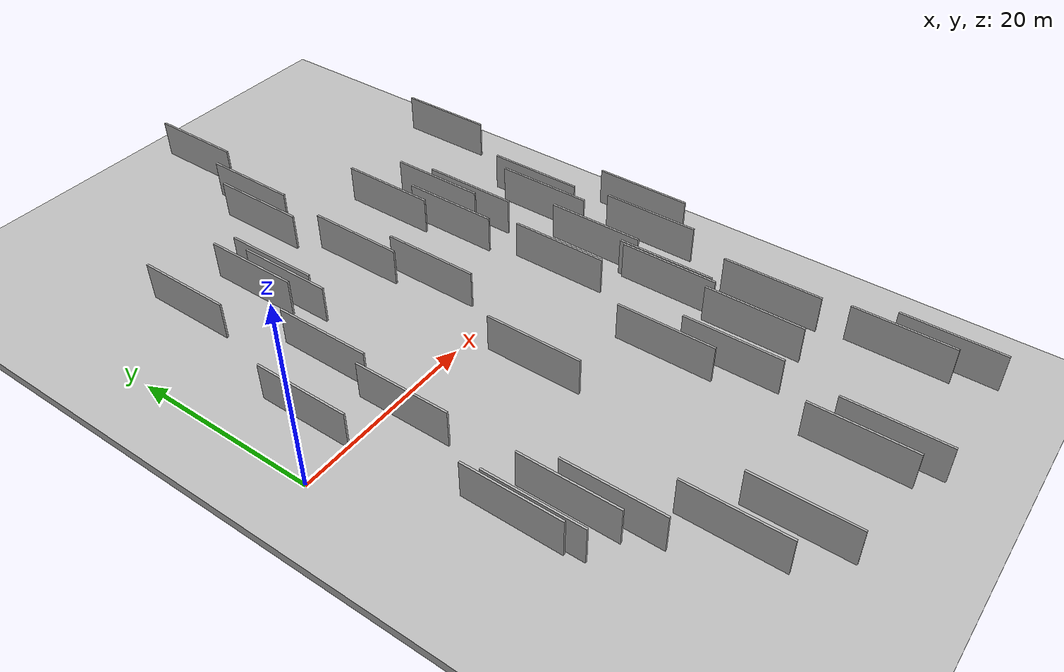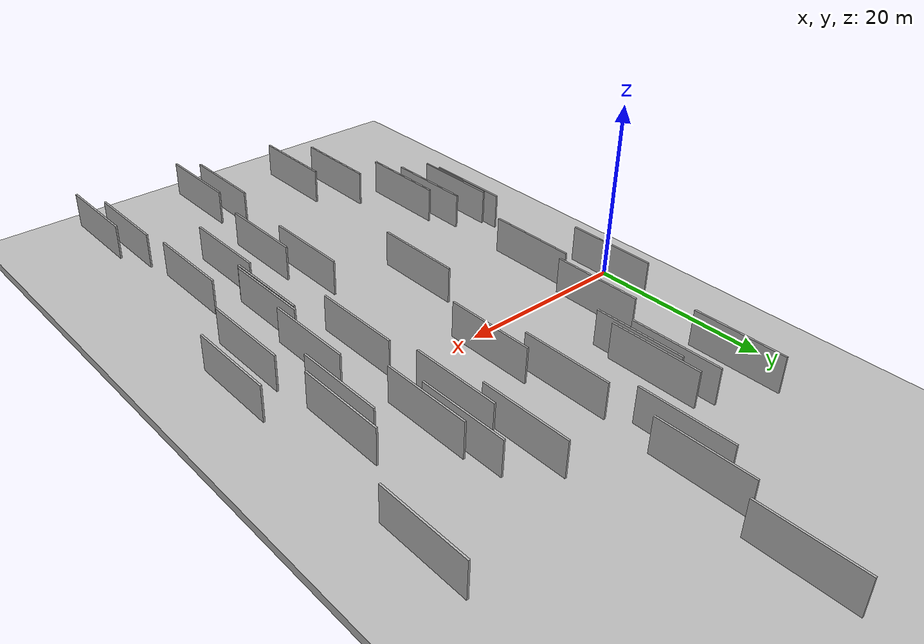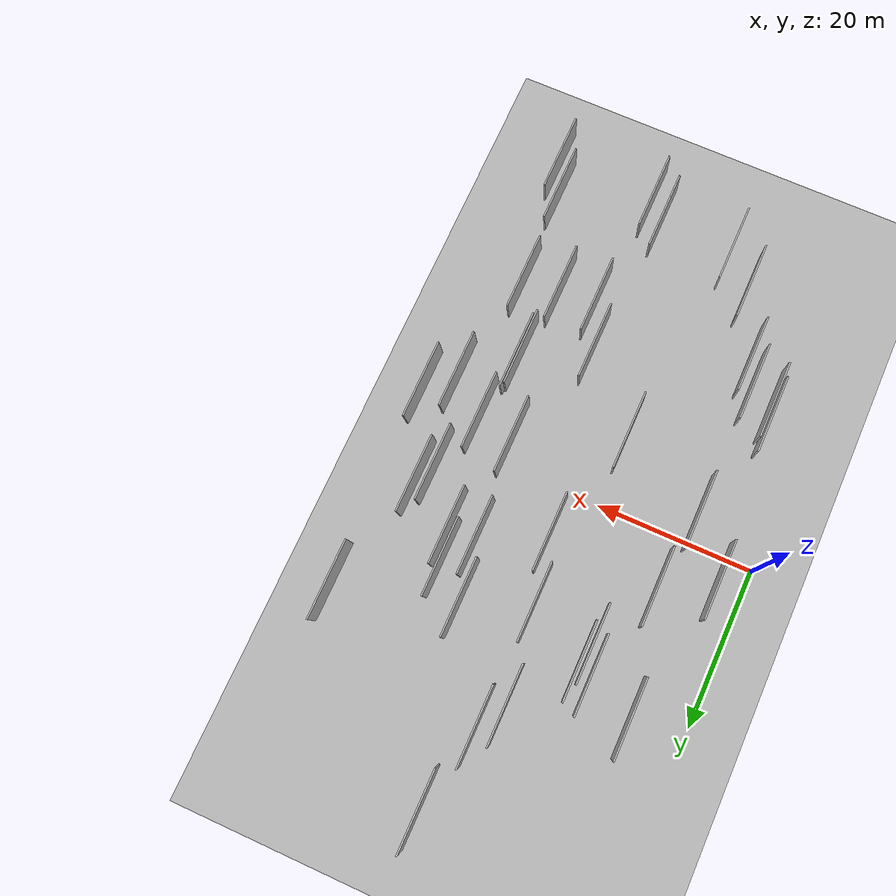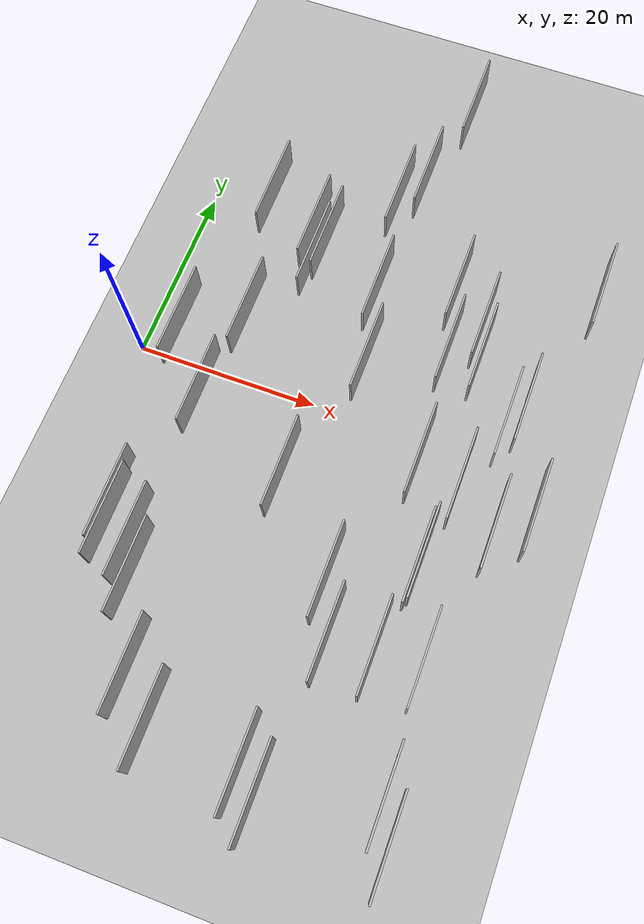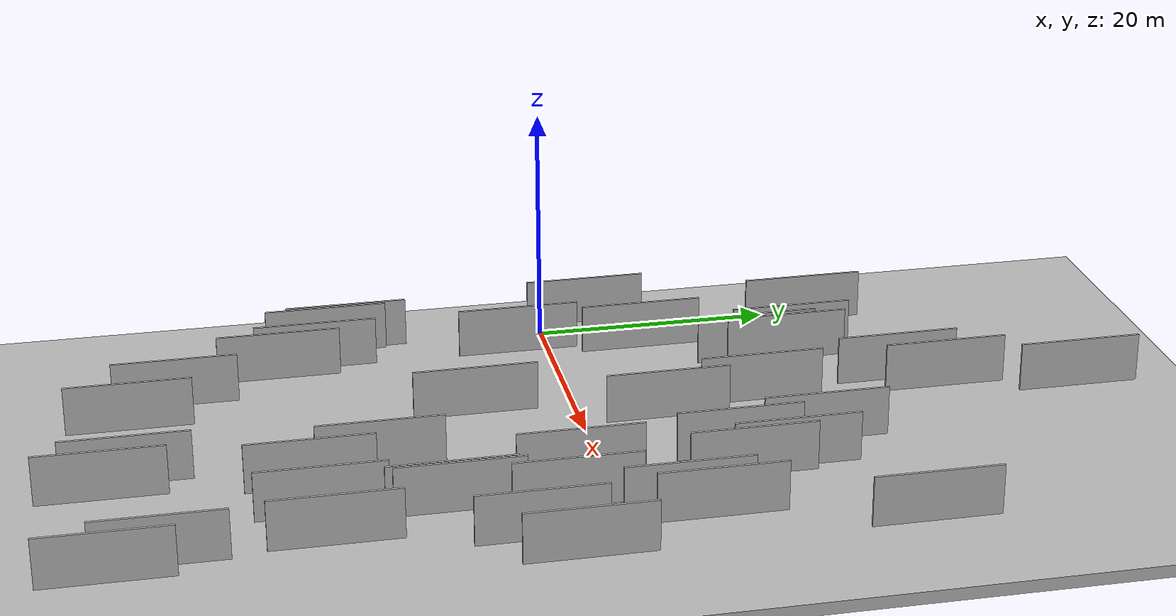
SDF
<?xml version="1.0" encoding="utf-8"?>

<sdf version="1.6">

   <world name="default">

      <gui fullscreen="0">

         <camera name="user_camera">

            <pose>-15 0 4.57585 0 0 0</pose>

            <view_controller>orbit</view_controller>

         </camera>

      </gui>

      <scene>

         <sky>

           <clouds>

             <speed>12</speed>

           </clouds>

         </sky>

         <ambient>0.4 0.4 0.4 1</ambient>

         <background>0.7 0.7 0.7 1</background>

         <shadows>1</shadows>

      </scene>

      <gravity>0 0 -9.8066</gravity>

      <magnetic_field>6e-06 2.3e-05 -4.2e-05</magnetic_field>

      <physics default="0" name="default_physics" type="ode">

         <ode>

            <solver>

               <type>quick</type>

               <iters>10</iters>

               <sor>1.0</sor>

               <use_dynamic_moi_rescaling>0</use_dynamic_moi_rescaling>

            </solver>

            <constraints>

               <cfm>0</cfm>

               <erp>0.2</erp>

               <contact_max_correcting_vel>100</contact_max_correcting_vel>

               <contact_surface_layer>0.001</contact_surface_layer>

            </constraints>

         </ode>

         <max_step_size>0.004</max_step_size>

         <real_time_factor>1</real_time_factor>

         <real_time_update_rate>250</real_time_update_rate>

      </physics>

      <light name="sun" type="directional">

         <cast_shadows>1</cast_shadows>

         <pose>0 0 10 0 0 0</pose>

         <diffuse>0.8 0.8 0.8 1</diffuse>

         <specular>0.2 0.2 0.2 1</specular>

         <attenuation>

            <range>1000</range>

            <constant>0.9</constant>

            <linear>0.01</linear>

            <quadratic>0.001</quadratic>

         </attenuation>

         <direction>-0.5 0.1 -0.9</direction>

      </light>

      <include>

         <name>ground_plane_1</name>

         <uri>model://HANNAS_ground_plane</uri>

         <pose>0 0 0  0 0 0</pose>

      </include>

      <include>

         <name>ground_plane_2</name>

         <uri>model://HANNAS_ground_plane</uri>

         <pose>100 0 0  0 0 0</pose>

      </include>

      <model name="HANNAS_wall_1">

         <static>1</static>

         <pose frame="">30.2794 -23.0548 2.5 0.000000 0.000000 1.570796</pose>

         <link name="link">

            <pose frame="">0 0 2.00 0 0 0</pose>

            <collision name="collision">

               <geometry>

                  <box>

                     <size>10.00 0.2 4.00</size>

                  </box>

               </geometry>

               <max_contacts>10</max_contacts>

               <surface>

                  <contact>

                     <ode/>

                  </contact>

                  <bounce/>

                  <friction>

                     <torsional>

                        <ode/>

                     </torsional>

                     <ode/>

                  </friction>

               </surface>

            </collision>

            <visual name="visual">

               <cast_shadows>0</cast_shadows>

               <geometry>

                  <box>

                     <size>10.00 0.2 4.00</size>

                  </box>

               </geometry>

               <material>

                  <script>

                     <uri>model://HANNAS_wall/materials/scripts</uri>

                     <uri>model://HANNAS_wall/materials/textures</uri>

                     <name>vrc/HANNAS_wall</name>

                  </script>

               </material>

            </visual>

            <self_collide>0</self_collide>

            <enable_wind>0</enable_wind>

            <kinematic>0</kinematic>

         </link>

      </model>

      <model name="HANNAS_wall_2">

         <static>1</static>

         <pose frame="">41.9882 -7.5884 2.5 0.000000 0.000000 1.570796</pose>

         <link name="link">

            <pose frame="">0 0 2.00 0 0 0</pose>

            <collision name="collision">

               <geometry>

                  <box>

                     <size>10.00 0.2 4.00</size>

                  </box>

               </geometry>

               <max_contacts>10</max_contacts>

               <surface>

                  <contact>

                     <ode/>

                  </contact>

                  <bounce/>

                  <friction>

                     <torsional>

                        <ode/>

                     </torsional>

                     <ode/>

                  </friction>

               </surface>

            </collision>

            <visual name="visual">

               <cast_shadows>0</cast_shadows>

               <geometry>

                  <box>

                     <size>10.00 0.2 4.00</size>

                  </box>

               </geometry>

               <material>

                  <script>

                     <uri>model://HANNAS_wall/materials/scripts</uri>

                     <uri>model://HANNAS_wall/materials/textures</uri>

                     <name>vrc/HANNAS_wall</name>

                  </script>

               </material>

            </visual>

            <self_collide>0</self_collide>

            <enable_wind>0</enable_wind>

            <kinematic>0</kinematic>

         </link>

      </model>

      <model name="HANNAS_wall_3">

         <static>1</static>

         <pose frame="">41.2114 6.0041 2.5 0.000000 0.000000 1.570796</pose>

         <link name="link">

            <pose frame="">0 0 2.00 0 0 0</pose>

            <collision name="collision">

               <geometry>

                  <box>

                     <size>10.00 0.2 4.00</size>

                  </box>

               </geometry>

               <max_contacts>10</max_contacts>

               <surface>

                  <contact>

                     <ode/>

                  </contact>

                  <bounce/>

                  <friction>

                     <torsional>

                        <ode/>

                     </torsional>

                     <ode/>

                  </friction>

               </surface>

            </collision>

            <visual name="visual">

               <cast_shadows>0</cast_shadows>

               <geometry>

                  <box>

                     <size>10.00 0.2 4.00</size>

                  </box>

               </geometry>

               <material>

                  <script>

                     <uri>model://HANNAS_wall/materials/scripts</uri>

                     <uri>model://HANNAS_wall/materials/textures</uri>

                     <name>vrc/HANNAS_wall</name>

                  </script>

               </material>

            </visual>

            <self_collide>0</self_collide>

            <enable_wind>0</enable_wind>

            <kinematic>0</kinematic>

         </link>

      </model>

      <model name="HANNAS_wall_4">

         <static>1</static>

         <pose frame="">3.7185 3.2324 2.5 0.000000 0.000000 1.570796</pose>

         <link name="link">

            <pose frame="">0 0 2.00 0 0 0</pose>

            <collision name="collision">

               <geometry>

                  <box>

                     <size>10.00 0.2 4.00</size>

                  </box>

               </geometry>

               <max_contacts>10</max_contacts>

               <surface>

                  <contact>

                     <ode/>

                  </contact>

                  <bounce/>

                  <friction>

                     <torsional>

                        <ode/>

                     </torsional>

                     <ode/>

                  </friction>

               </surface>

            </collision>

            <visual name="visual">

               <cast_shadows>0</cast_shadows>

               <geometry>

                  <box>

                     <size>10.00 0.2 4.00</size>

                  </box>

               </geometry>

               <material>

                  <script>

                     <uri>model://HANNAS_wall/materials/scripts</uri>

                     <uri>model://HANNAS_wall/materials/textures</uri>

                     <name>vrc/HANNAS_wall</name>

                  </script>

               </material>

            </visual>

            <self_collide>0</self_collide>

            <enable_wind>0</enable_wind>

            <kinematic>0</kinematic>

         </link>

      </model>

      <model name="HANNAS_wall_5">

         <static>1</static>

         <pose frame="">39.6640 -22.1935 2.5 0.000000 0.000000 1.570796</pose>

         <link name="link">

            <pose frame="">0 0 2.00 0 0 0</pose>

            <collision name="collision">

               <geometry>

                  <box>

                     <size>10.00 0.2 4.00</size>

                  </box>

               </geometry>

               <max_contacts>10</max_contacts>

               <surface>

                  <contact>

                     <ode/>

                  </contact>

                  <bounce/>

                  <friction>

                     <torsional>

                        <ode/>

                     </torsional>

                     <ode/>

                  </friction>

               </surface>

            </collision>

            <visual name="visual">

               <cast_shadows>0</cast_shadows>

               <geometry>

                  <box>

                     <size>10.00 0.2 4.00</size>

                  </box>

               </geometry>

               <material>

                  <script>

                     <uri>model://HANNAS_wall/materials/scripts</uri>

                     <uri>model://HANNAS_wall/materials/textures</uri>

                     <name>vrc/HANNAS_wall</name>

                  </script>

               </material>

            </visual>

            <self_collide>0</self_collide>

            <enable_wind>0</enable_wind>

            <kinematic>0</kinematic>

         </link>

      </model>

      <model name="HANNAS_wall_6">

         <static>1</static>

         <pose frame="">30.3912 16.9985 2.5 0.000000 0.000000 1.570796</pose>

         <link name="link">

            <pose frame="">0 0 2.00 0 0 0</pose>

            <collision name="collision">

               <geometry>

                  <box>

                     <size>10.00 0.2 4.00</size>

                  </box>

               </geometry>

               <max_contacts>10</max_contacts>

               <surface>

                  <contact>

                     <ode/>

                  </contact>

                  <bounce/>

                  <friction>

                     <torsional>

                        <ode/>

                     </torsional>

                     <ode/>

                  </friction>

               </surface>

            </collision>

            <visual name="visual">

               <cast_shadows>0</cast_shadows>

               <geometry>

                  <box>

                     <size>10.00 0.2 4.00</size>

                  </box>

               </geometry>

               <material>

                  <script>

                     <uri>model://HANNAS_wall/materials/scripts</uri>

                     <uri>model://HANNAS_wall/materials/textures</uri>

                     <name>vrc/HANNAS_wall</name>

                  </script>

               </material>

            </visual>

            <self_collide>0</self_collide>

            <enable_wind>0</enable_wind>

            <kinematic>0</kinematic>

         </link>

      </model>

      <model name="HANNAS_wall_7">

         <static>1</static>

         <pose frame="">17.3504 -35.9372 2.5 0.000000 0.000000 1.570796</pose>

         <link name="link">

            <pose frame="">0 0 2.00 0 0 0</pose>

            <collision name="collision">

               <geometry>

                  <box>

                     <size>10.00 0.2 4.00</size>

                  </box>

               </geometry>

               <max_contacts>10</max_contacts>

               <surface>

                  <contact>

                     <ode/>

                  </contact>

                  <bounce/>

                  <friction>

                     <torsional>

                        <ode/>

                     </torsional>

                     <ode/>

                  </friction>

               </surface>

            </collision>

            <visual name="visual">

               <cast_shadows>0</cast_shadows>

               <geometry>

                  <box>

                     <size>10.00 0.2 4.00</size>

                  </box>

               </geometry>

               <material>

                  <script>

                     <uri>model://HANNAS_wall/materials/scripts</uri>

                     <uri>model://HANNAS_wall/materials/textures</uri>

                     <name>vrc/HANNAS_wall</name>

                  </script>

               </material>

            </visual>

            <self_collide>0</self_collide>

            <enable_wind>0</enable_wind>

            <kinematic>0</kinematic>

         </link>

      </model>

      <model name="HANNAS_wall_8">

         <static>1</static>

         <pose frame="">22.7517 29.2488 2.5 0.000000 0.000000 1.570796</pose>

         <link name="link">

            <pose frame="">0 0 2.00 0 0 0</pose>

            <collision name="collision">

               <geometry>

                  <box>

                     <size>10.00 0.2 4.00</size>

                  </box>

               </geometry>

               <max_contacts>10</max_contacts>

               <surface>

                  <contact>

                     <ode/>

                  </contact>

                  <bounce/>

                  <friction>

                     <torsional>

                        <ode/>

                     </torsional>

                     <ode/>

                  </friction>

               </surface>

            </collision>

            <visual name="visual">

               <cast_shadows>0</cast_shadows>

               <geometry>

                  <box>

                     <size>10.00 0.2 4.00</size>

                  </box>

               </geometry>

               <material>

                  <script>

                     <uri>model://HANNAS_wall/materials/scripts</uri>

                     <uri>model://HANNAS_wall/materials/textures</uri>

                     <name>vrc/HANNAS_wall</name>

                  </script>

               </material>

            </visual>

            <self_collide>0</self_collide>

            <enable_wind>0</enable_wind>

            <kinematic>0</kinematic>

         </link>

      </model>

      <model name="HANNAS_wall_9">

         <static>1</static>

         <pose frame="">36.3619 -12.6385 2.5 0.000000 0.000000 1.570796</pose>

         <link name="link">

            <pose frame="">0 0 2.00 0 0 0</pose>

            <collision name="collision">

               <geometry>

                  <box>

                     <size>10.00 0.2 4.00</size>

                  </box>

               </geometry>

               <max_contacts>10</max_contacts>

               <surface>

                  <contact>

                     <ode/>

                  </contact>

                  <bounce/>

                  <friction>

                     <torsional>

                        <ode/>

                     </torsional>

                     <ode/>

                  </friction>

               </surface>

            </collision>

            <visual name="visual">

               <cast_shadows>0</cast_shadows>

               <geometry>

                  <box>

                     <size>10.00 0.2 4.00</size>

                  </box>

               </geometry>

               <material>

                  <script>

                     <uri>model://HANNAS_wall/materials/scripts</uri>

                     <uri>model://HANNAS_wall/materials/textures</uri>

                     <name>vrc/HANNAS_wall</name>

                  </script>

               </material>

            </visual>

            <self_collide>0</self_collide>

            <enable_wind>0</enable_wind>

            <kinematic>0</kinematic>

         </link>

      </model>

      <model name="HANNAS_wall_10">

         <static>1</static>

         <pose frame="">35.1726 9.9835 2.5 0.000000 0.000000 1.570796</pose>

         <link name="link">

            <pose frame="">0 0 2.00 0 0 0</pose>

            <collision name="collision">

               <geometry>

                  <box>

                     <size>10.00 0.2 4.00</size>

                  </box>

               </geometry>

               <max_contacts>10</max_contacts>

               <surface>

                  <contact>

                     <ode/>

                  </contact>

                  <bounce/>

                  <friction>

                     <torsional>

                        <ode/>

                     </torsional>

                     <ode/>

                  </friction>

               </surface>

            </collision>

            <visual name="visual">

               <cast_shadows>0</cast_shadows>

               <geometry>

                  <box>

                     <size>10.00 0.2 4.00</size>

                  </box>

               </geometry>

               <material>

                  <script>

                     <uri>model://HANNAS_wall/materials/scripts</uri>

                     <uri>model://HANNAS_wall/materials/textures</uri>

                     <name>vrc/HANNAS_wall</name>

                  </script>

               </material>

            </visual>

            <self_collide>0</self_collide>

            <enable_wind>0</enable_wind>

            <kinematic>0</kinematic>

         </link>

      </model>

      <model name="HANNAS_wall_11">

         <static>1</static>

         <pose frame="">34.3081 13.6093 2.5 0.000000 0.000000 1.570796</pose>

         <link name="link">

            <pose frame="">0 0 2.00 0 0 0</pose>

            <collision name="collision">

               <geometry>

                  <box>

                     <size>10.00 0.2 4.00</size>

                  </box>

               </geometry>

               <max_contacts>10</max_contacts>

               <surface>

                  <contact>

                     <ode/>

                  </contact>

                  <bounce/>

                  <friction>

                     <torsional>

                        <ode/>

                     </torsional>

                     <ode/>

                  </friction>

               </surface>

            </collision>

            <visual name="visual">

               <cast_shadows>0</cast_shadows>

               <geometry>

                  <box>

                     <size>10.00 0.2 4.00</size>

                  </box>

               </geometry>

               <material>

                  <script>

                     <uri>model://HANNAS_wall/materials/scripts</uri>

                     <uri>model://HANNAS_wall/materials/textures</uri>

                     <name>vrc/HANNAS_wall</name>

                  </script>

               </material>

            </visual>

            <self_collide>0</self_collide>

            <enable_wind>0</enable_wind>

            <kinematic>0</kinematic>

         </link>

      </model>

      <model name="HANNAS_wall_12">

         <static>1</static>

         <pose frame="">23.8626 5.9200 2.5 0.000000 0.000000 1.570796</pose>

         <link name="link">

            <pose frame="">0 0 2.00 0 0 0</pose>

            <collision name="collision">

               <geometry>

                  <box>

                     <size>10.00 0.2 4.00</size>

                  </box>

               </geometry>

               <max_contacts>10</max_contacts>

               <surface>

                  <contact>

                     <ode/>

                  </contact>

                  <bounce/>

                  <friction>

                     <torsional>

                        <ode/>

                     </torsional>

                     <ode/>

                  </friction>

               </surface>

            </collision>

            <visual name="visual">

               <cast_shadows>0</cast_shadows>

               <geometry>

                  <box>

                     <size>10.00 0.2 4.00</size>

                  </box>

               </geometry>

               <material>

                  <script>

                     <uri>model://HANNAS_wall/materials/scripts</uri>

                     <uri>model://HANNAS_wall/materials/textures</uri>

                     <name>vrc/HANNAS_wall</name>

                  </script>

               </material>

            </visual>

            <self_collide>0</self_collide>

            <enable_wind>0</enable_wind>

            <kinematic>0</kinematic>

         </link>

      </model>

      <model name="HANNAS_wall_13">

         <static>1</static>

         <pose frame="">37.4167 -4.0301 2.5 0.000000 0.000000 1.570796</pose>

         <link name="link">

            <pose frame="">0 0 2.00 0 0 0</pose>

            <collision name="collision">

               <geometry>

                  <box>

                     <size>10.00 0.2 4.00</size>

                  </box>

               </geometry>

               <max_contacts>10</max_contacts>

               <surface>

                  <contact>

                     <ode/>

                  </contact>

                  <bounce/>

                  <friction>

                     <torsional>

                        <ode/>

                     </torsional>

                     <ode/>

                  </friction>

               </surface>

            </collision>

            <visual name="visual">

               <cast_shadows>0</cast_shadows>

               <geometry>

                  <box>

                     <size>10.00 0.2 4.00</size>

                  </box>

               </geometry>

               <material>

                  <script>

                     <uri>model://HANNAS_wall/materials/scripts</uri>

                     <uri>model://HANNAS_wall/materials/textures</uri>

                     <name>vrc/HANNAS_wall</name>

                  </script>

               </material>

            </visual>

            <self_collide>0</self_collide>

            <enable_wind>0</enable_wind>

            <kinematic>0</kinematic>

         </link>

      </model>

      <model name="HANNAS_wall_14">

         <static>1</static>

         <pose frame="">14.8687 18.0672 2.5 0.000000 0.000000 1.570796</pose>

         <link name="link">

            <pose frame="">0 0 2.00 0 0 0</pose>

            <collision name="collision">

               <geometry>

                  <box>

                     <size>10.00 0.2 4.00</size>

                  </box>

               </geometry>

               <max_contacts>10</max_contacts>

               <surface>

                  <contact>

                     <ode/>

                  </contact>

                  <bounce/>

                  <friction>

                     <torsional>

                        <ode/>

                     </torsional>

                     <ode/>

                  </friction>

               </surface>

            </collision>

            <visual name="visual">

               <cast_shadows>0</cast_shadows>

               <geometry>

                  <box>

                     <size>10.00 0.2 4.00</size>

                  </box>

               </geometry>

               <material>

                  <script>

                     <uri>model://HANNAS_wall/materials/scripts</uri>

                     <uri>model://HANNAS_wall/materials/textures</uri>

                     <name>vrc/HANNAS_wall</name>

                  </script>

               </material>

            </visual>

            <self_collide>0</self_collide>

            <enable_wind>0</enable_wind>

            <kinematic>0</kinematic>

         </link>

      </model>

      <model name="HANNAS_wall_15">

         <static>1</static>

         <pose frame="">20.0746 -8.8930 2.5 0.000000 0.000000 1.570796</pose>

         <link name="link">

            <pose frame="">0 0 2.00 0 0 0</pose>

            <collision name="collision">

               <geometry>

                  <box>

                     <size>10.00 0.2 4.00</size>

                  </box>

               </geometry>

               <max_contacts>10</max_contacts>

               <surface>

                  <contact>

                     <ode/>

                  </contact>

                  <bounce/>

                  <friction>

                     <torsional>

                        <ode/>

                     </torsional>

                     <ode/>

                  </friction>

               </surface>

            </collision>

            <visual name="visual">

               <cast_shadows>0</cast_shadows>

               <geometry>

                  <box>

                     <size>10.00 0.2 4.00</size>

                  </box>

               </geometry>

               <material>

                  <script>

                     <uri>model://HANNAS_wall/materials/scripts</uri>

                     <uri>model://HANNAS_wall/materials/textures</uri>

                     <name>vrc/HANNAS_wall</name>

                  </script>

               </material>

            </visual>

            <self_collide>0</self_collide>

            <enable_wind>0</enable_wind>

            <kinematic>0</kinematic>

         </link>

      </model>

      <model name="HANNAS_wall_16">

         <static>1</static>

         <pose frame="">29.0551 -38.5126 2.5 0.000000 0.000000 1.570796</pose>

         <link name="link">

            <pose frame="">0 0 2.00 0 0 0</pose>

            <collision name="collision">

               <geometry>

                  <box>

                     <size>10.00 0.2 4.00</size>

                  </box>

               </geometry>

               <max_contacts>10</max_contacts>

               <surface>

                  <contact>

                     <ode/>

                  </contact>

                  <bounce/>

                  <friction>

                     <torsional>

                        <ode/>

                     </torsional>

                     <ode/>

                  </friction>

               </surface>

            </collision>

            <visual name="visual">

               <cast_shadows>0</cast_shadows>

               <geometry>

                  <box>

                     <size>10.00 0.2 4.00</size>

                  </box>

               </geometry>

               <material>

                  <script>

                     <uri>model://HANNAS_wall/materials/scripts</uri>

                     <uri>model://HANNAS_wall/materials/textures</uri>

                     <name>vrc/HANNAS_wall</name>

                  </script>

               </material>

            </visual>

            <self_collide>0</self_collide>

            <enable_wind>0</enable_wind>

            <kinematic>0</kinematic>

         </link>

      </model>

      <model name="HANNAS_wall_17">

         <static>1</static>

         <pose frame="">32.7055 -2.8801 2.5 0.000000 0.000000 1.570796</pose>

         <link name="link">

            <pose frame="">0 0 2.00 0 0 0</pose>

            <collision name="collision">

               <geometry>

                  <box>

                     <size>10.00 0.2 4.00</size>

                  </box>

               </geometry>

               <max_contacts>10</max_contacts>

               <surface>

                  <contact>

                     <ode/>

                  </contact>

                  <bounce/>

                  <friction>

                     <torsional>

                        <ode/>

                     </torsional>

                     <ode/>

                  </friction>

               </surface>

            </collision>

            <visual name="visual">

               <cast_shadows>0</cast_shadows>

               <geometry>

                  <box>

                     <size>10.00 0.2 4.00</size>

                  </box>

               </geometry>

               <material>

                  <script>

                     <uri>model://HANNAS_wall/materials/scripts</uri>

                     <uri>model://HANNAS_wall/materials/textures</uri>

                     <name>vrc/HANNAS_wall</name>

                  </script>

               </material>

            </visual>

            <self_collide>0</self_collide>

            <enable_wind>0</enable_wind>

            <kinematic>0</kinematic>

         </link>

      </model>

      <model name="HANNAS_wall_18">

         <static>1</static>

         <pose frame="">36.0712 -13.2041 2.5 0.000000 0.000000 1.570796</pose>

         <link name="link">

            <pose frame="">0 0 2.00 0 0 0</pose>

            <collision name="collision">

               <geometry>

                  <box>

                     <size>10.00 0.2 4.00</size>

                  </box>

               </geometry>

               <max_contacts>10</max_contacts>

               <surface>

                  <contact>

                     <ode/>

                  </contact>

                  <bounce/>

                  <friction>

                     <torsional>

                        <ode/>

                     </torsional>

                     <ode/>

                  </friction>

               </surface>

            </collision>

            <visual name="visual">

               <cast_shadows>0</cast_shadows>

               <geometry>

                  <box>

                     <size>10.00 0.2 4.00</size>

                  </box>

               </geometry>

               <material>

                  <script>

                     <uri>model://HANNAS_wall/materials/scripts</uri>

                     <uri>model://HANNAS_wall/materials/textures</uri>

                     <name>vrc/HANNAS_wall</name>

                  </script>

               </material>

            </visual>

            <self_collide>0</self_collide>

            <enable_wind>0</enable_wind>

            <kinematic>0</kinematic>

         </link>

      </model>

      <model name="HANNAS_wall_19">

         <static>1</static>

         <pose frame="">9.9695 6.7768 2.5 0.000000 0.000000 1.570796</pose>

         <link name="link">

            <pose frame="">0 0 2.00 0 0 0</pose>

            <collision name="collision">

               <geometry>

                  <box>

                     <size>10.00 0.2 4.00</size>

                  </box>

               </geometry>

               <max_contacts>10</max_contacts>

               <surface>

                  <contact>

                     <ode/>

                  </contact>

                  <bounce/>

                  <friction>

                     <torsional>

                        <ode/>

                     </torsional>

                     <ode/>

                  </friction>

               </surface>

            </collision>

            <visual name="visual">

               <cast_shadows>0</cast_shadows>

               <geometry>

                  <box>

                     <size>10.00 0.2 4.00</size>

                  </box>

               </geometry>

               <material>

                  <script>

                     <uri>model://HANNAS_wall/materials/scripts</uri>

                     <uri>model://HANNAS_wall/materials/textures</uri>

                     <name>vrc/HANNAS_wall</name>

                  </script>

               </material>

            </visual>

            <self_collide>0</self_collide>

            <enable_wind>0</enable_wind>

            <kinematic>0</kinematic>

         </link>

      </model>

      <model name="HANNAS_wall_20">

         <static>1</static>

         <pose frame="">13.6038 -32.1284 2.5 0.000000 0.000000 1.570796</pose>

         <link name="link">

            <pose frame="">0 0 2.00 0 0 0</pose>

            <collision name="collision">

               <geometry>

                  <box>

                     <size>10.00 0.2 4.00</size>

                  </box>

               </geometry>

               <max_contacts>10</max_contacts>

               <surface>

                  <contact>

                     <ode/>

                  </contact>

                  <bounce/>

                  <friction>

                     <torsional>

                        <ode/>

                     </torsional>

                     <ode/>

                  </friction>

               </surface>

            </collision>

            <visual name="visual">

               <cast_shadows>0</cast_shadows>

               <geometry>

                  <box>

                     <size>10.00 0.2 4.00</size>

                  </box>

               </geometry>

               <material>

                  <script>

                     <uri>model://HANNAS_wall/materials/scripts</uri>

                     <uri>model://HANNAS_wall/materials/textures</uri>

                     <name>vrc/HANNAS_wall</name>

                  </script>

               </material>

            </visual>

            <self_collide>0</self_collide>

            <enable_wind>0</enable_wind>

            <kinematic>0</kinematic>

         </link>

      </model>

      <model name="HANNAS_wall_21">

         <static>1</static>

         <pose frame="">20.6222 25.8553 2.5 0.000000 0.000000 1.570796</pose>

         <link name="link">

            <pose frame="">0 0 2.00 0 0 0</pose>

            <collision name="collision">

               <geometry>

                  <box>

                     <size>10.00 0.2 4.00</size>

                  </box>

               </geometry>

               <max_contacts>10</max_contacts>

               <surface>

                  <contact>

                     <ode/>

                  </contact>

                  <bounce/>

                  <friction>

                     <torsional>

                        <ode/>

                     </torsional>

                     <ode/>

                  </friction>

               </surface>

            </collision>

            <visual name="visual">

               <cast_shadows>0</cast_shadows>

               <geometry>

                  <box>

                     <size>10.00 0.2 4.00</size>

                  </box>

               </geometry>

               <material>

                  <script>

                     <uri>model://HANNAS_wall/materials/scripts</uri>

                     <uri>model://HANNAS_wall/materials/textures</uri>

                     <name>vrc/HANNAS_wall</name>

                  </script>

               </material>

            </visual>

            <self_collide>0</self_collide>

            <enable_wind>0</enable_wind>

            <kinematic>0</kinematic>

         </link>

      </model>

      <model name="HANNAS_wall_22">

         <static>1</static>

         <pose frame="">10.0516 -23.5459 2.5 0.000000 0.000000 1.570796</pose>

         <link name="link">

            <pose frame="">0 0 2.00 0 0 0</pose>

            <collision name="collision">

               <geometry>

                  <box>

                     <size>10.00 0.2 4.00</size>

                  </box>

               </geometry>

               <max_contacts>10</max_contacts>

               <surface>

                  <contact>

                     <ode/>

                  </contact>

                  <bounce/>

                  <friction>

                     <torsional>

                        <ode/>

                     </torsional>

                     <ode/>

                  </friction>

               </surface>

            </collision>

            <visual name="visual">

               <cast_shadows>0</cast_shadows>

               <geometry>

                  <box>

                     <size>10.00 0.2 4.00</size>

                  </box>

               </geometry>

               <material>

                  <script>

                     <uri>model://HANNAS_wall/materials/scripts</uri>

                     <uri>model://HANNAS_wall/materials/textures</uri>

                     <name>vrc/HANNAS_wall</name>

                  </script>

               </material>

            </visual>

            <self_collide>0</self_collide>

            <enable_wind>0</enable_wind>

            <kinematic>0</kinematic>

         </link>

      </model>

      <model name="HANNAS_wall_23">

         <static>1</static>

         <pose frame="">7.1945 21.6105 2.5 0.000000 0.000000 1.570796</pose>

         <link name="link">

            <pose frame="">0 0 2.00 0 0 0</pose>

            <collision name="collision">

               <geometry>

                  <box>

                     <size>10.00 0.2 4.00</size>

                  </box>

               </geometry>

               <max_contacts>10</max_contacts>

               <surface>

                  <contact>

                     <ode/>

                  </contact>

                  <bounce/>

                  <friction>

                     <torsional>

                        <ode/>

                     </torsional>

                     <ode/>

                  </friction>

               </surface>

            </collision>

            <visual name="visual">

               <cast_shadows>0</cast_shadows>

               <geometry>

                  <box>

                     <size>10.00 0.2 4.00</size>

                  </box>

               </geometry>

               <material>

                  <script>

                     <uri>model://HANNAS_wall/materials/scripts</uri>

                     <uri>model://HANNAS_wall/materials/textures</uri>

                     <name>vrc/HANNAS_wall</name>

                  </script>

               </material>

            </visual>

            <self_collide>0</self_collide>

            <enable_wind>0</enable_wind>

            <kinematic>0</kinematic>

         </link>

      </model>

      <model name="HANNAS_wall_24">

         <static>1</static>

         <pose frame="">45.3429 -4.6886 2.5 0.000000 0.000000 1.570796</pose>

         <link name="link">

            <pose frame="">0 0 2.00 0 0 0</pose>

            <collision name="collision">

               <geometry>

                  <box>

                     <size>10.00 0.2 4.00</size>

                  </box>

               </geometry>

               <max_contacts>10</max_contacts>

               <surface>

                  <contact>

                     <ode/>

                  </contact>

                  <bounce/>

                  <friction>

                     <torsional>

                        <ode/>

                     </torsional>

                     <ode/>

                  </friction>

               </surface>

            </collision>

            <visual name="visual">

               <cast_shadows>0</cast_shadows>

               <geometry>

                  <box>

                     <size>10.00 0.2 4.00</size>

                  </box>

               </geometry>

               <material>

                  <script>

                     <uri>model://HANNAS_wall/materials/scripts</uri>

                     <uri>model://HANNAS_wall/materials/textures</uri>

                     <name>vrc/HANNAS_wall</name>

                  </script>

               </material>

            </visual>

            <self_collide>0</self_collide>

            <enable_wind>0</enable_wind>

            <kinematic>0</kinematic>

         </link>

      </model>

      <model name="HANNAS_wall_25">

         <static>1</static>

         <pose frame="">8.6170 -20.3999 2.5 0.000000 0.000000 1.570796</pose>

         <link name="link">

            <pose frame="">0 0 2.00 0 0 0</pose>

            <collision name="collision">

               <geometry>

                  <box>

                     <size>10.00 0.2 4.00</size>

                  </box>

               </geometry>

               <max_contacts>10</max_contacts>

               <surface>

                  <contact>

                     <ode/>

                  </contact>

                  <bounce/>

                  <friction>

                     <torsional>

                        <ode/>

                     </torsional>

                     <ode/>

                  </friction>

               </surface>

            </collision>

            <visual name="visual">

               <cast_shadows>0</cast_shadows>

               <geometry>

                  <box>

                     <size>10.00 0.2 4.00</size>

                  </box>

               </geometry>

               <material>

                  <script>

                     <uri>model://HANNAS_wall/materials/scripts</uri>

                     <uri>model://HANNAS_wall/materials/textures</uri>

                     <name>vrc/HANNAS_wall</name>

                  </script>

               </material>

            </visual>

            <self_collide>0</self_collide>

            <enable_wind>0</enable_wind>

            <kinematic>0</kinematic>

         </link>

      </model>

      <model name="HANNAS_wall_26">

         <static>1</static>

         <pose frame="">40.2537 -34.7423 2.5 0.000000 0.000000 1.570796</pose>

         <link name="link">

            <pose frame="">0 0 2.00 0 0 0</pose>

            <collision name="collision">

               <geometry>

                  <box>

                     <size>10.00 0.2 4.00</size>

                  </box>

               </geometry>

               <max_contacts>10</max_contacts>

               <surface>

                  <contact>

                     <ode/>

                  </contact>

                  <bounce/>

                  <friction>

                     <torsional>

                        <ode/>

                     </torsional>

                     <ode/>

                  </friction>

               </surface>

            </collision>

            <visual name="visual">

               <cast_shadows>0</cast_shadows>

               <geometry>

                  <box>

                     <size>10.00 0.2 4.00</size>

                  </box>

               </geometry>

               <material>

                  <script>

                     <uri>model://HANNAS_wall/materials/scripts</uri>

                     <uri>model://HANNAS_wall/materials/textures</uri>

                     <name>vrc/HANNAS_wall</name>

                  </script>

               </material>

            </visual>

            <self_collide>0</self_collide>

            <enable_wind>0</enable_wind>

            <kinematic>0</kinematic>

         </link>

      </model>

      <model name="HANNAS_wall_27">

         <static>1</static>

         <pose frame="">5.5946 -19.1985 2.5 0.000000 0.000000 1.570796</pose>

         <link name="link">

            <pose frame="">0 0 2.00 0 0 0</pose>

            <collision name="collision">

               <geometry>

                  <box>

                     <size>10.00 0.2 4.00</size>

                  </box>

               </geometry>

               <max_contacts>10</max_contacts>

               <surface>

                  <contact>

                     <ode/>

                  </contact>

                  <bounce/>

                  <friction>

                     <torsional>

                        <ode/>

                     </torsional>

                     <ode/>

                  </friction>

               </surface>

            </collision>

            <visual name="visual">

               <cast_shadows>0</cast_shadows>

               <geometry>

                  <box>

                     <size>10.00 0.2 4.00</size>

                  </box>

               </geometry>

               <material>

                  <script>

                     <uri>model://HANNAS_wall/materials/scripts</uri>

                     <uri>model://HANNAS_wall/materials/textures</uri>

                     <name>vrc/HANNAS_wall</name>

                  </script>

               </material>

            </visual>

            <self_collide>0</self_collide>

            <enable_wind>0</enable_wind>

            <kinematic>0</kinematic>

         </link>

      </model>

      <model name="HANNAS_wall_28">

         <static>1</static>

         <pose frame="">22.2194 14.0126 2.5 0.000000 0.000000 1.570796</pose>

         <link name="link">

            <pose frame="">0 0 2.00 0 0 0</pose>

            <collision name="collision">

               <geometry>

                  <box>

                     <size>10.00 0.2 4.00</size>

                  </box>

               </geometry>

               <max_contacts>10</max_contacts>

               <surface>

                  <contact>

                     <ode/>

                  </contact>

                  <bounce/>

                  <friction>

                     <torsional>

                        <ode/>

                     </torsional>

                     <ode/>

                  </friction>

               </surface>

            </collision>

            <visual name="visual">

               <cast_shadows>0</cast_shadows>

               <geometry>

                  <box>

                     <size>10.00 0.2 4.00</size>

                  </box>

               </geometry>

               <material>

                  <script>

                     <uri>model://HANNAS_wall/materials/scripts</uri>

                     <uri>model://HANNAS_wall/materials/textures</uri>

                     <name>vrc/HANNAS_wall</name>

                  </script>

               </material>

            </visual>

            <self_collide>0</self_collide>

            <enable_wind>0</enable_wind>

            <kinematic>0</kinematic>

         </link>

      </model>

      <model name="HANNAS_wall_29">

         <static>1</static>

         <pose frame="">14.2439 15.6941 2.5 0.000000 0.000000 1.570796</pose>

         <link name="link">

            <pose frame="">0 0 2.00 0 0 0</pose>

            <collision name="collision">

               <geometry>

                  <box>

                     <size>10.00 0.2 4.00</size>

                  </box>

               </geometry>

               <max_contacts>10</max_contacts>

               <surface>

                  <contact>

                     <ode/>

                  </contact>

                  <bounce/>

                  <friction>

                     <torsional>

                        <ode/>

                     </torsional>

                     <ode/>

                  </friction>

               </surface>

            </collision>

            <visual name="visual">

               <cast_shadows>0</cast_shadows>

               <geometry>

                  <box>

                     <size>10.00 0.2 4.00</size>

                  </box>

               </geometry>

               <material>

                  <script>

                     <uri>model://HANNAS_wall/materials/scripts</uri>

                     <uri>model://HANNAS_wall/materials/textures</uri>

                     <name>vrc/HANNAS_wall</name>

                  </script>

               </material>

            </visual>

            <self_collide>0</self_collide>

            <enable_wind>0</enable_wind>

            <kinematic>0</kinematic>

         </link>

      </model>

      <model name="HANNAS_wall_30">

         <static>1</static>

         <pose frame="">26.8885 -36.5599 2.5 0.000000 0.000000 1.570796</pose>

         <link name="link">

            <pose frame="">0 0 2.00 0 0 0</pose>

            <collision name="collision">

               <geometry>

                  <box>

                     <size>10.00 0.2 4.00</size>

                  </box>

               </geometry>

               <max_contacts>10</max_contacts>

               <surface>

                  <contact>

                     <ode/>

                  </contact>

                  <bounce/>

                  <friction>

                     <torsional>

                        <ode/>

                     </torsional>

                     <ode/>

                  </friction>

               </surface>

            </collision>

            <visual name="visual">

               <cast_shadows>0</cast_shadows>

               <geometry>

                  <box>

                     <size>10.00 0.2 4.00</size>

                  </box>

               </geometry>

               <material>

                  <script>

                     <uri>model://HANNAS_wall/materials/scripts</uri>

                     <uri>model://HANNAS_wall/materials/textures</uri>

                     <name>vrc/HANNAS_wall</name>

                  </script>

               </material>

            </visual>

            <self_collide>0</self_collide>

            <enable_wind>0</enable_wind>

            <kinematic>0</kinematic>

         </link>

      </model>

      <model name="HANNAS_wall_31">

         <static>1</static>

         <pose frame="">24.9037 39.9494 2.5 0.000000 0.000000 1.570796</pose>

         <link name="link">

            <pose frame="">0 0 2.00 0 0 0</pose>

            <collision name="collision">

               <geometry>

                  <box>

                     <size>10.00 0.2 4.00</size>

                  </box>

               </geometry>

               <max_contacts>10</max_contacts>

               <surface>

                  <contact>

                     <ode/>

                  </contact>

                  <bounce/>

                  <friction>

                     <torsional>

                        <ode/>

                     </torsional>

                     <ode/>

                  </friction>

               </surface>

            </collision>

            <visual name="visual">

               <cast_shadows>0</cast_shadows>

               <geometry>

                  <box>

                     <size>10.00 0.2 4.00</size>

                  </box>

               </geometry>

               <material>

                  <script>

                     <uri>model://HANNAS_wall/materials/scripts</uri>

                     <uri>model://HANNAS_wall/materials/textures</uri>

                     <name>vrc/HANNAS_wall</name>

                  </script>

               </material>

            </visual>

            <self_collide>0</self_collide>

            <enable_wind>0</enable_wind>

            <kinematic>0</kinematic>

         </link>

      </model>

      <model name="HANNAS_wall_32">

         <static>1</static>

         <pose frame="">45.0777 21.1826 2.5 0.000000 0.000000 1.570796</pose>

         <link name="link">

            <pose frame="">0 0 2.00 0 0 0</pose>

            <collision name="collision">

               <geometry>

                  <box>

                     <size>10.00 0.2 4.00</size>

                  </box>

               </geometry>

               <max_contacts>10</max_contacts>

               <surface>

                  <contact>

                     <ode/>

                  </contact>

                  <bounce/>

                  <friction>

                     <torsional>

                        <ode/>

                     </torsional>

                     <ode/>

                  </friction>

               </surface>

            </collision>

            <visual name="visual">

               <cast_shadows>0</cast_shadows>

               <geometry>

                  <box>

                     <size>10.00 0.2 4.00</size>

                  </box>

               </geometry>

               <material>

                  <script>

                     <uri>model://HANNAS_wall/materials/scripts</uri>

                     <uri>model://HANNAS_wall/materials/textures</uri>

                     <name>vrc/HANNAS_wall</name>

                  </script>

               </material>

            </visual>

            <self_collide>0</self_collide>

            <enable_wind>0</enable_wind>

            <kinematic>0</kinematic>

         </link>

      </model>

      <model name="HANNAS_wall_33">

         <static>1</static>

         <pose frame="">13.0723 18.9525 2.5 0.000000 0.000000 1.570796</pose>

         <link name="link">

            <pose frame="">0 0 2.00 0 0 0</pose>

            <collision name="collision">

               <geometry>

                  <box>

                     <size>10.00 0.2 4.00</size>

                  </box>

               </geometry>

               <max_contacts>10</max_contacts>

               <surface>

                  <contact>

                     <ode/>

                  </contact>

                  <bounce/>

                  <friction>

                     <torsional>

                        <ode/>

                     </torsional>

                     <ode/>

                  </friction>

               </surface>

            </collision>

            <visual name="visual">

               <cast_shadows>0</cast_shadows>

               <geometry>

                  <box>

                     <size>10.00 0.2 4.00</size>

                  </box>

               </geometry>

               <material>

                  <script>

                     <uri>model://HANNAS_wall/materials/scripts</uri>

                     <uri>model://HANNAS_wall/materials/textures</uri>

                     <name>vrc/HANNAS_wall</name>

                  </script>

               </material>

            </visual>

            <self_collide>0</self_collide>

            <enable_wind>0</enable_wind>

            <kinematic>0</kinematic>

         </link>

      </model>

      <model name="HANNAS_wall_34">

         <static>1</static>

         <pose frame="">31.6674 9.7786 2.5 0.000000 0.000000 1.570796</pose>

         <link name="link">

            <pose frame="">0 0 2.00 0 0 0</pose>

            <collision name="collision">

               <geometry>

                  <box>

                     <size>10.00 0.2 4.00</size>

                  </box>

               </geometry>

               <max_contacts>10</max_contacts>

               <surface>

                  <contact>

                     <ode/>

                  </contact>

                  <bounce/>

                  <friction>

                     <torsional>

                        <ode/>

                     </torsional>

                     <ode/>

                  </friction>

               </surface>

            </collision>

            <visual name="visual">

               <cast_shadows>0</cast_shadows>

               <geometry>

                  <box>

                     <size>10.00 0.2 4.00</size>

                  </box>

               </geometry>

               <material>

                  <script>

                     <uri>model://HANNAS_wall/materials/scripts</uri>

                     <uri>model://HANNAS_wall/materials/textures</uri>

                     <name>vrc/HANNAS_wall</name>

                  </script>

               </material>

            </visual>

            <self_collide>0</self_collide>

            <enable_wind>0</enable_wind>

            <kinematic>0</kinematic>

         </link>

      </model>

      <model name="HANNAS_wall_35">

         <static>1</static>

         <pose frame="">39.7845 3.8638 2.5 0.000000 0.000000 1.570796</pose>

         <link name="link">

            <pose frame="">0 0 2.00 0 0 0</pose>

            <collision name="collision">

               <geometry>

                  <box>

                     <size>10.00 0.2 4.00</size>

                  </box>

               </geometry>

               <max_contacts>10</max_contacts>

               <surface>

                  <contact>

                     <ode/>

                  </contact>

                  <bounce/>

                  <friction>

                     <torsional>

                        <ode/>

                     </torsional>

                     <ode/>

                  </friction>

               </surface>

            </collision>

            <visual name="visual">

               <cast_shadows>0</cast_shadows>

               <geometry>

                  <box>

                     <size>10.00 0.2 4.00</size>

                  </box>

               </geometry>

               <material>

                  <script>

                     <uri>model://HANNAS_wall/materials/scripts</uri>

                     <uri>model://HANNAS_wall/materials/textures</uri>

                     <name>vrc/HANNAS_wall</name>

                  </script>

               </material>

            </visual>

            <self_collide>0</self_collide>

            <enable_wind>0</enable_wind>

            <kinematic>0</kinematic>

         </link>

      </model>

      <model name="HANNAS_wall_36">

         <static>1</static>

         <pose frame="">41.9185 -38.5793 2.5 0.000000 0.000000 1.570796</pose>

         <link name="link">

            <pose frame="">0 0 2.00 0 0 0</pose>

            <collision name="collision">

               <geometry>

                  <box>

                     <size>10.00 0.2 4.00</size>

                  </box>

               </geometry>

               <max_contacts>10</max_contacts>

               <surface>

                  <contact>

                     <ode/>

                  </contact>

                  <bounce/>

                  <friction>

                     <torsional>

                        <ode/>

                     </torsional>

                     <ode/>

                  </friction>

               </surface>

            </collision>

            <visual name="visual">

               <cast_shadows>0</cast_shadows>

               <geometry>

                  <box>

                     <size>10.00 0.2 4.00</size>

                  </box>

               </geometry>

               <material>

                  <script>

                     <uri>model://HANNAS_wall/materials/scripts</uri>

                     <uri>model://HANNAS_wall/materials/textures</uri>

                     <name>vrc/HANNAS_wall</name>

                  </script>

               </material>

            </visual>

            <self_collide>0</self_collide>

            <enable_wind>0</enable_wind>

            <kinematic>0</kinematic>

         </link>

      </model>

      <model name="HANNAS_wall_37">

         <static>1</static>

         <pose frame="">28.1922 -17.5101 2.5 0.000000 0.000000 1.570796</pose>

         <link name="link">

            <pose frame="">0 0 2.00 0 0 0</pose>

            <collision name="collision">

               <geometry>

                  <box>

                     <size>10.00 0.2 4.00</size>

                  </box>

               </geometry>

               <max_contacts>10</max_contacts>

               <surface>

                  <contact>

                     <ode/>

                  </contact>

                  <bounce/>

                  <friction>

                     <torsional>

                        <ode/>

                     </torsional>

                     <ode/>

                  </friction>

               </surface>

            </collision>

            <visual name="visual">

               <cast_shadows>0</cast_shadows>

               <geometry>

                  <box>

                     <size>10.00 0.2 4.00</size>

                  </box>

               </geometry>

               <material>

                  <script>

                     <uri>model://HANNAS_wall/materials/scripts</uri>

                     <uri>model://HANNAS_wall/materials/textures</uri>

                     <name>vrc/HANNAS_wall</name>

                  </script>

               </material>

            </visual>

            <self_collide>0</self_collide>

            <enable_wind>0</enable_wind>

            <kinematic>0</kinematic>

         </link>

      </model>

      <model name="HANNAS_wall_38">

         <static>1</static>

         <pose frame="">34.9871 -22.7264 2.5 0.000000 0.000000 1.570796</pose>

         <link name="link">

            <pose frame="">0 0 2.00 0 0 0</pose>

            <collision name="collision">

               <geometry>

                  <box>

                     <size>10.00 0.2 4.00</size>

                  </box>

               </geometry>

               <max_contacts>10</max_contacts>

               <surface>

                  <contact>

                     <ode/>

                  </contact>

                  <bounce/>

                  <friction>

                     <torsional>

                        <ode/>

                     </torsional>

                     <ode/>

                  </friction>

               </surface>

            </collision>

            <visual name="visual">

               <cast_shadows>0</cast_shadows>

               <geometry>

                  <box>

                     <size>10.00 0.2 4.00</size>

                  </box>

               </geometry>

               <material>

                  <script>

                     <uri>model://HANNAS_wall/materials/scripts</uri>

                     <uri>model://HANNAS_wall/materials/textures</uri>

                     <name>vrc/HANNAS_wall</name>

                  </script>

               </material>

            </visual>

            <self_collide>0</self_collide>

            <enable_wind>0</enable_wind>

            <kinematic>0</kinematic>

         </link>

      </model>

      <model name="HANNAS_wall_39">

         <static>1</static>

         <pose frame="">5.1914 -17.4537 2.5 0.000000 0.000000 1.570796</pose>

         <link name="link">

            <pose frame="">0 0 2.00 0 0 0</pose>

            <collision name="collision">

               <geometry>

                  <box>

                     <size>10.00 0.2 4.00</size>

                  </box>

               </geometry>

               <max_contacts>10</max_contacts>

               <surface>

                  <contact>

                     <ode/>

                  </contact>

                  <bounce/>

                  <friction>

                     <torsional>

                        <ode/>

                     </torsional>

                     <ode/>

                  </friction>

               </surface>

            </collision>

            <visual name="visual">

               <cast_shadows>0</cast_shadows>

               <geometry>

                  <box>

                     <size>10.00 0.2 4.00</size>

                  </box>

               </geometry>

               <material>

                  <script>

                     <uri>model://HANNAS_wall/materials/scripts</uri>

                     <uri>model://HANNAS_wall/materials/textures</uri>

                     <name>vrc/HANNAS_wall</name>

                  </script>

               </material>

            </visual>

            <self_collide>0</self_collide>

            <enable_wind>0</enable_wind>

            <kinematic>0</kinematic>

         </link>

      </model>

      <model name="HANNAS_wall_40">

         <static>1</static>

         <pose frame="">8.7418 -3.4508 2.5 0.000000 0.000000 1.570796</pose>

         <link name="link">

            <pose frame="">0 0 2.00 0 0 0</pose>

            <collision name="collision">

               <geometry>

                  <box>

                     <size>10.00 0.2 4.00</size>

                  </box>

               </geometry>

               <max_contacts>10</max_contacts>

               <surface>

                  <contact>

                     <ode/>

                  </contact>

                  <bounce/>

                  <friction>

                     <torsional>

                        <ode/>

                     </torsional>

                     <ode/>

                  </friction>

               </surface>

            </collision>

            <visual name="visual">

               <cast_shadows>0</cast_shadows>

               <geometry>

                  <box>

                     <size>10.00 0.2 4.00</size>

                  </box>

               </geometry>

               <material>

                  <script>

                     <uri>model://HANNAS_wall/materials/scripts</uri>

                     <uri>model://HANNAS_wall/materials/textures</uri>

                     <name>vrc/HANNAS_wall</name>

                  </script>

               </material>

            </visual>

            <self_collide>0</self_collide>

            <enable_wind>0</enable_wind>

            <kinematic>0</kinematic>

         </link>

      </model>

   </world>

</sdf>
